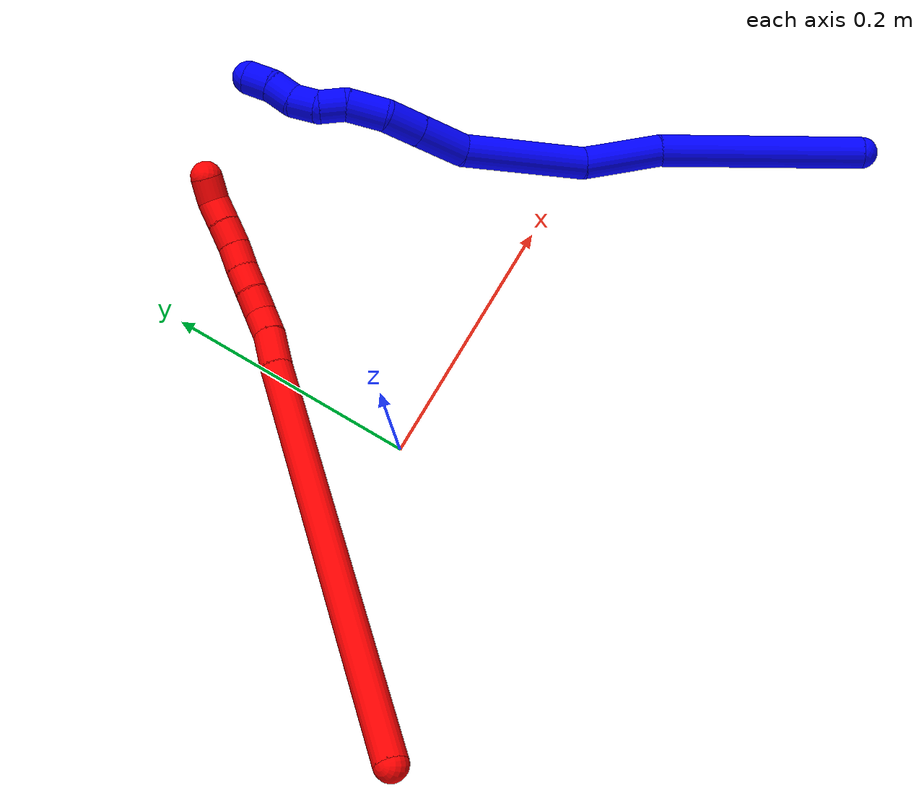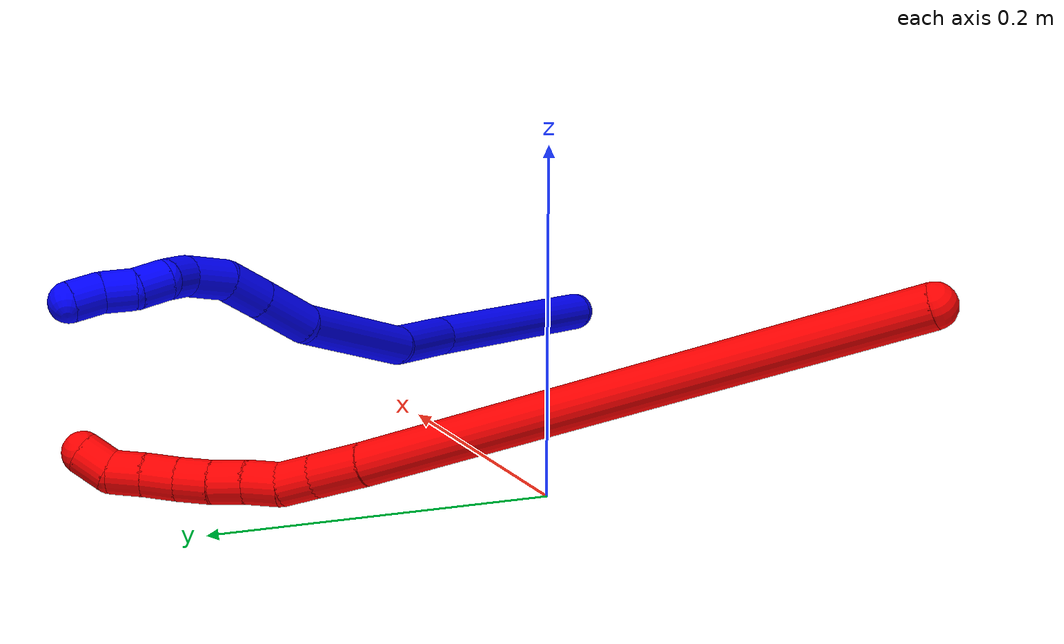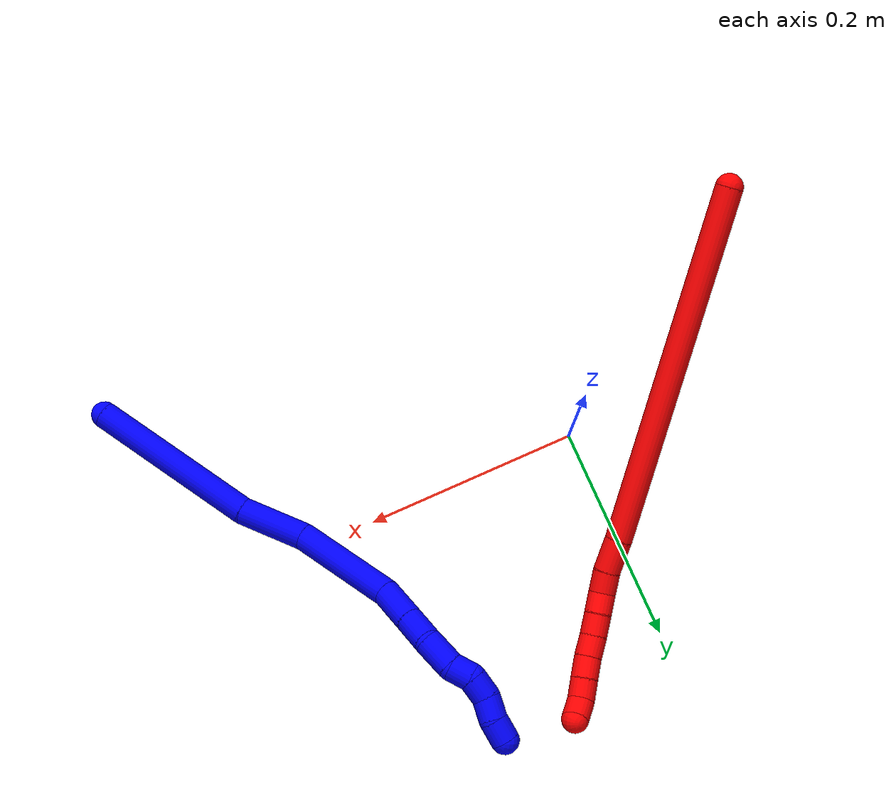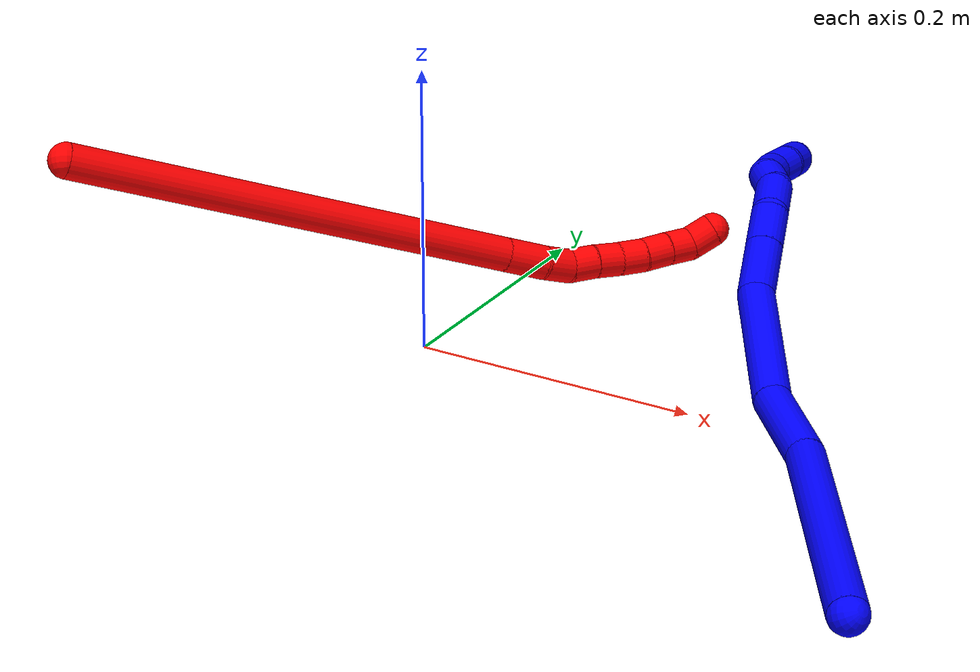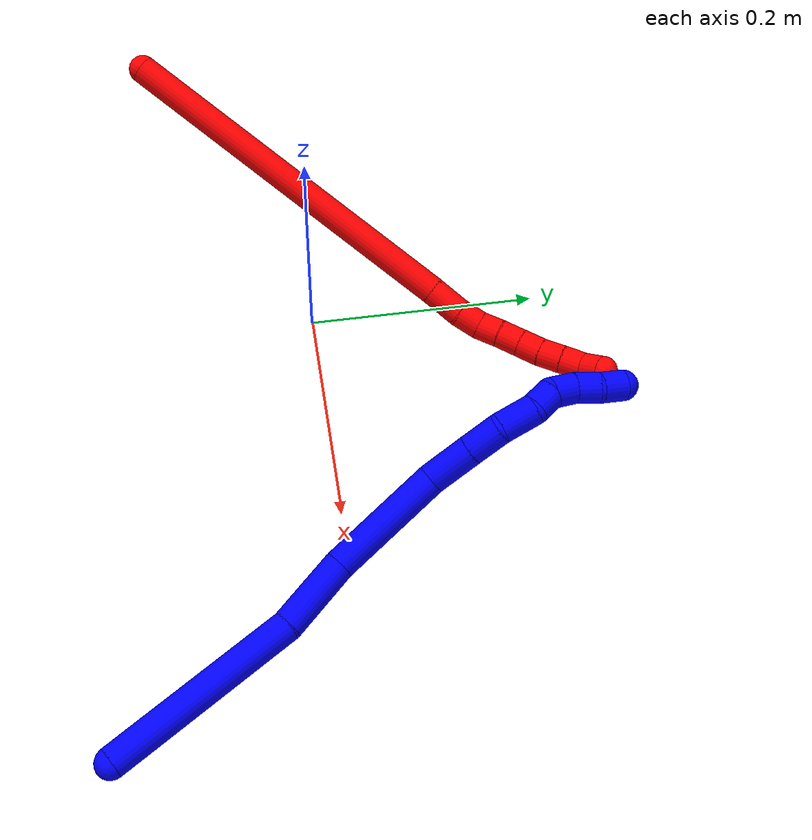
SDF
<sdf version="1.7">
 <world name="default">
  <plugin name="TubeGeneratorPlugin" filename="libtube_generator_plugin.so"/>
  <model name="photoneo_s_sensor">
   <static>1</static>
   <pose>0 0 2 1.57079 1.57079 3.14159</pose>
   <link name="link">
    <inertial><mass>0.1</mass></inertial>
    <sensor name="sensor" type="depth">
     <update_rate>30</update_rate>
     <camera>
      <horizontal_fov>1.22</horizontal_fov>
      <image><width>1920</width><height>1200</height><format>B8G8R8</format></image>
      <clip><near>0.1</near><far>4</far></clip>
      <depth_camera><output>points</output></depth_camera>
     </camera>
     <plugin name="camera_plugin" filename="libgazebo_ros_depth_camera.so">
      <baseline>0.2</baseline>
      <alwaysOn>1</alwaysOn>
      <updateRate>0.0</updateRate>
      <cameraName>camera_ir</cameraName>
      <imageTopicName>/camera/color/image_raw</imageTopicName>
      <cameraInfoTopicName>/camera/color/camera_info</cameraInfoTopicName>
      <depthImageTopicName>/camera/depth/image_raw</depthImageTopicName>
      <depthImageCameraInfoTopicName>/camera/depth/camera_info</depthImageCameraInfoTopicName>
      <pointCloudTopicName>/camera/depth/points</pointCloudTopicName>
      <frameName>fr_optical</frameName>
      <pointCloudCutoff>0.1</pointCloudCutoff>
      <pointCloudCutoffMax>2.0</pointCloudCutoffMax>
      <distortionK1>0</distortionK1>
      <distortionK2>0</distortionK2>
      <distortionK3>0</distortionK3>
      <distortionT1>0</distortionT1>
      <distortionT2>0</distortionT2>
      <CxPrime>0</CxPrime>
      <Cx>0</Cx>
      <Cy>0</Cy>
      <focalLength>0</focalLength>
      <hackBaseline>0</hackBaseline>
     </plugin>
    </sensor>
   </link>
  </model>
  <gravity>0 0 -9.8</gravity>
  <magnetic_field>6e-06 2.3e-05 -4.2e-05</magnetic_field>
  <atmosphere type="adiabatic"/>
  <physics name="default_physics" default="0" type="ode">
   <max_step_size>0.003</max_step_size>
   <real_time_factor>1</real_time_factor>
   <real_time_update_rate>1000</real_time_update_rate>
   <max_contacts>10000</max_contacts>
   <ode>
    <solver>
     <type>quick</type>
     <iters>100</iters>
     <sor>1.3</sor>
     <use_dynamic_moi_rescaling>0</use_dynamic_moi_rescaling>
    </solver>
    <constraints>
     <contact_max_correcting_vel>0</contact_max_correcting_vel>
     <contact_surface_layer>0.001</contact_surface_layer>
     <cfm>0</cfm>
     <erp>0.2</erp>
    </constraints>
   </ode>
  </physics>
  <scene><ambient>0.4 0.4 0.4 1</ambient><background>0.7 0.7 0.7 1</background><shadows>0</shadows></scene>
  <audio><device>default</device></audio>
  <spherical_coordinates>
   <surface_model>EARTH_WGS84</surface_model>
   <latitude_deg>0</latitude_deg>
   <longitude_deg>0</longitude_deg>
   <elevation>0</elevation>
   <heading_deg>0</heading_deg>
  </spherical_coordinates>
  <model name="bin">
   <static>1</static>
   <link name="bottom">
    <collision name="collision-bottom">
     <pose>0 0 -0.01 0 -0 0</pose>
     <geometry><box><size>0.8 0.6 0.02</size></box></geometry>
     <surface>
      <friction><ode><mu>100</mu><mu2>100</mu2></ode></friction>
      <contact><collide_bitmask>65535</collide_bitmask></contact>
     </surface>
    </collision>
   </link>
   <link name="west_wall">
    <collision name="collision-west_wall">
     <pose>-0.41 0 0.1 0 -0 0</pose>
     <geometry><box><size>0.02 0.6 0.2</size></box></geometry>
     <surface>
      <friction><ode><mu>100</mu><mu2>100</mu2></ode></friction>
      <contact><collide_bitmask>65535</collide_bitmask></contact>
     </surface>
    </collision>
   </link>
   <link name="east_wall">
    <collision name="collision-east_wall">
     <pose>0.41 0 0.1 0 -0 0</pose>
     <geometry><box><size>0.02 0.6 0.2</size></box></geometry>
     <surface>
      <friction><ode><mu>100</mu><mu2>100</mu2></ode></friction>
      <contact><collide_bitmask>65535</collide_bitmask></contact>
     </surface>
    </collision>
   </link>
   <link name="south_wall">
    <collision name="collision-south_wall">
     <pose>0 -0.31 0.1 0 -0 0</pose>
     <geometry><box><size>0.8 0.02 0.2</size></box></geometry>
     <surface>
      <friction><ode><mu>100</mu><mu2>100</mu2></ode></friction>
      <contact><collide_bitmask>65535</collide_bitmask></contact>
     </surface>
    </collision>
   </link>
   <link name="north_wall">
    <collision name="collision-north_wall">
     <pose>0 0.31 0.1 0 -0 0</pose>
     <geometry><box><size>0.8 0.02 0.2</size></box></geometry>
     <surface>
      <friction><ode><mu>100</mu><mu2>100</mu2></ode></friction>
      <contact><collide_bitmask>65535</collide_bitmask></contact>
     </surface>
    </collision>
   </link>
  </model>
  <model name="1">
   <static>0</static>
   <link name="1">
    <collision name="collision-cylinder-e_1_1_4">
     <pose>0.003445 0.065846 0.046228 -0.958694 0.042798 -0.022248</pose>
     <geometry><cylinder><radius>0.0125</radius><length>0.161054</length></cylinder></geometry>
     <surface>
      <friction><ode><mu>1.16</mu><mu2>1.16</mu2><slip1>0</slip1><slip2>0</slip2></ode></friction>
      <contact><ode><kp>1e+06</kp><kd>1</kd><max_vel>0</max_vel><min_depth>0.001</min_depth></ode></contact>
     </surface>
    </collision>
    <visual name="visual-cylinder-e_1_1_4">
     <pose>0.003445 0.065846 0.046228 -0.958694 0.042798 -0.022248</pose>
     <geometry><cylinder><radius>0.0125</radius><length>0.161054</length></cylinder></geometry>
     <material><ambient>0 0 1 1</ambient></material>
    </visual>
    <collision name="collision-cylinder-e_2_4_5">
     <pose>0.013536 0.154546 0.112415 -0.852869 0.215602 -0.098253</pose>
     <geometry><cylinder><radius>0.0125</radius><length>0.062123</length></cylinder></geometry>
     <surface>
      <friction><ode><mu>1.16</mu><mu2>1.16</mu2><slip1>0</slip1><slip2>0</slip2></ode></friction>
      <contact><ode><kp>1e+06</kp><kd>1</kd><max_vel>0</max_vel><min_depth>0.001</min_depth></ode></contact>
     </surface>
    </collision>
    <visual name="visual-cylinder-e_2_4_5">
     <pose>0.013536 0.154546 0.112415 -0.852869 0.215602 -0.098253</pose>
     <geometry><cylinder><radius>0.0125</radius><length>0.062123</length></cylinder></geometry>
     <material><ambient>0 0 1 1</ambient></material>
    </visual>
    <collision name="collision-cylinder-e_3_5_6">
     <pose>0.030364 0.221071 0.152044 -1.14763 0.209493 -0.135697</pose>
     <geometry><cylinder><radius>0.0125</radius><length>0.097935</length></cylinder></geometry>
     <surface>
      <friction><ode><mu>1.16</mu><mu2>1.16</mu2><slip1>0</slip1><slip2>0</slip2></ode></friction>
      <contact><ode><kp>1e+06</kp><kd>1</kd><max_vel>0</max_vel><min_depth>0.001</min_depth></ode></contact>
     </surface>
    </collision>
    <visual name="visual-cylinder-e_3_5_6">
     <pose>0.030364 0.221071 0.152044 -1.14763 0.209493 -0.135697</pose>
     <geometry><cylinder><radius>0.0125</radius><length>0.097935</length></cylinder></geometry>
     <material><ambient>0 0 1 1</ambient></material>
    </visual>
    <collision name="collision-cylinder-e_4_6_7">
     <pose>0.044346 0.283888 0.173459 -1.47988 0.195048 -0.178169</pose>
     <geometry><cylinder><radius>0.0125</radius><length>0.039193</length></cylinder></geometry>
     <surface>
      <friction><ode><mu>1.16</mu><mu2>1.16</mu2><slip1>0</slip1><slip2>0</slip2></ode></friction>
      <contact><ode><kp>1e+06</kp><kd>1</kd><max_vel>0</max_vel><min_depth>0.001</min_depth></ode></contact>
     </surface>
    </collision>
    <visual name="visual-cylinder-e_4_6_7">
     <pose>0.044346 0.283888 0.173459 -1.47988 0.195048 -0.178169</pose>
     <geometry><cylinder><radius>0.0125</radius><length>0.039193</length></cylinder></geometry>
     <material><ambient>0 0 1 1</ambient></material>
    </visual>
    <collision name="collision-cylinder-e_5_7_8">
     <pose>0.050752 0.316981 0.176528 -1.47613 0.184066 -0.167499</pose>
     <geometry><cylinder><radius>0.0125</radius><length>0.028501</length></cylinder></geometry>
     <surface>
      <friction><ode><mu>1.16</mu><mu2>1.16</mu2><slip1>0</slip1><slip2>0</slip2></ode></friction>
      <contact><ode><kp>1e+06</kp><kd>1</kd><max_vel>0</max_vel><min_depth>0.001</min_depth></ode></contact>
     </surface>
    </collision>
    <visual name="visual-cylinder-e_5_7_8">
     <pose>0.050752 0.316981 0.176528 -1.47613 0.184066 -0.167499</pose>
     <geometry><cylinder><radius>0.0125</radius><length>0.028501</length></cylinder></geometry>
     <material><ambient>0 0 1 1</ambient></material>
    </visual>
    <collision name="collision-cylinder-e_6_8_9">
     <pose>0.05314 0.345134 0.18317 -1.21264 -0.014507 0.01006</pose>
     <geometry><cylinder><radius>0.0125</radius><length>0.03034</length></cylinder></geometry>
     <surface>
      <friction><ode><mu>1.16</mu><mu2>1.16</mu2><slip1>0</slip1><slip2>0</slip2></ode></friction>
      <contact><ode><kp>1e+06</kp><kd>1</kd><max_vel>0</max_vel><min_depth>0.001</min_depth></ode></contact>
     </surface>
    </collision>
    <visual name="visual-cylinder-e_6_8_9">
     <pose>0.05314 0.345134 0.18317 -1.21264 -0.014507 0.01006</pose>
     <geometry><cylinder><radius>0.0125</radius><length>0.03034</length></cylinder></geometry>
     <material><ambient>0 0 1 1</ambient></material>
    </visual>
    <collision name="collision-cylinder-e_7_9_10">
     <pose>0.054147 0.366985 0.194874 -0.874839 0.122462 -0.057323</pose>
     <geometry><cylinder><radius>0.0125</radius><length>0.020076</length></cylinder></geometry>
     <surface>
      <friction><ode><mu>1.16</mu><mu2>1.16</mu2><slip1>0</slip1><slip2>0</slip2></ode></friction>
      <contact><ode><kp>1e+06</kp><kd>1</kd><max_vel>0</max_vel><min_depth>0.001</min_depth></ode></contact>
     </surface>
    </collision>
    <visual name="visual-cylinder-e_7_9_10">
     <pose>0.054147 0.366985 0.194874 -0.874839 0.122462 -0.057323</pose>
     <geometry><cylinder><radius>0.0125</radius><length>0.020076</length></cylinder></geometry>
     <material><ambient>0 0 1 1</ambient></material>
    </visual>
    <collision name="collision-cylinder-e_8_10_11">
     <pose>0.051769 0.38279 0.20635 -1.0132 -0.358623 0.200487</pose>
     <geometry><cylinder><radius>0.0125</radius><length>0.020537</length></cylinder></geometry>
     <surface>
      <friction><ode><mu>1.16</mu><mu2>1.16</mu2><slip1>0</slip1><slip2>0</slip2></ode></friction>
      <contact><ode><kp>1e+06</kp><kd>1</kd><max_vel>0</max_vel><min_depth>0.001</min_depth></ode></contact>
     </surface>
    </collision>
    <visual name="visual-cylinder-e_8_10_11">
     <pose>0.051769 0.38279 0.20635 -1.0132 -0.358623 0.200487</pose>
     <geometry><cylinder><radius>0.0125</radius><length>0.020537</length></cylinder></geometry>
     <material><ambient>0 0 1 1</ambient></material>
    </visual>
    <collision name="collision-cylinder-e_9_11_12">
     <pose>0.043403 0.399562 0.213291 -1.35886 -0.495533 0.403097</pose>
     <geometry><cylinder><radius>0.0125</radius><length>0.020029</length></cylinder></geometry>
     <surface>
      <friction><ode><mu>1.16</mu><mu2>1.16</mu2><slip1>0</slip1><slip2>0</slip2></ode></friction>
      <contact><ode><kp>1e+06</kp><kd>1</kd><max_vel>0</max_vel><min_depth>0.001</min_depth></ode></contact>
     </surface>
    </collision>
    <visual name="visual-cylinder-e_9_11_12">
     <pose>0.043403 0.399562 0.213291 -1.35886 -0.495533 0.403097</pose>
     <geometry><cylinder><radius>0.0125</radius><length>0.020029</length></cylinder></geometry>
     <material><ambient>0 0 1 1</ambient></material>
    </visual>
    <collision name="collision-cylinder-e_10_12_2">
     <pose>0.034269 0.416196 0.219466 -1.07661 -0.447382 0.270039</pose>
     <geometry><cylinder><radius>0.0125</radius><length>0.020212</length></cylinder></geometry>
     <surface>
      <friction><ode><mu>1.16</mu><mu2>1.16</mu2><slip1>0</slip1><slip2>0</slip2></ode></friction>
      <contact><ode><kp>1e+06</kp><kd>1</kd><max_vel>0</max_vel><min_depth>0.001</min_depth></ode></contact>
     </surface>
    </collision>
    <visual name="visual-cylinder-e_10_12_2">
     <pose>0.034269 0.416196 0.219466 -1.07661 -0.447382 0.270039</pose>
     <geometry><cylinder><radius>0.0125</radius><length>0.020212</length></cylinder></geometry>
     <material><ambient>0 0 1 1</ambient></material>
    </visual>
    <collision name="collision-sphere-2">
     <pose>0.029897 0.424217 0.223787 0 -0 0</pose>
     <geometry><sphere><radius>0.0125</radius></sphere></geometry>
     <surface>
      <friction><ode><mu>1.16</mu><mu2>1.16</mu2><slip1>0</slip1><slip2>0</slip2></ode></friction>
      <contact><ode><kp>1e+06</kp><kd>1</kd><max_vel>0</max_vel><min_depth>0.001</min_depth></ode></contact>
     </surface>
    </collision>
    <visual name="visual-sphere-2">
     <pose>0.029897 0.424217 0.223787 0 -0 0</pose>
     <geometry><sphere><radius>0.0125</radius></sphere></geometry>
     <material><ambient>0 0 1 1</ambient></material>
    </visual>
    <collision name="collision-sphere-12">
     <pose>0.038641 0.408175 0.215144 0 -0 0</pose>
     <geometry><sphere><radius>0.0125</radius></sphere></geometry>
     <surface>
      <friction><ode><mu>1.16</mu><mu2>1.16</mu2><slip1>0</slip1><slip2>0</slip2></ode></friction>
      <contact><ode><kp>1e+06</kp><kd>1</kd><max_vel>0</max_vel><min_depth>0.001</min_depth></ode></contact>
     </surface>
    </collision>
    <visual name="visual-sphere-12">
     <pose>0.038641 0.408175 0.215144 0 -0 0</pose>
     <geometry><sphere><radius>0.0125</radius></sphere></geometry>
     <material><ambient>0 0 1 1</ambient></material>
    </visual>
    <collision name="collision-sphere-11">
     <pose>0.048165 0.390949 0.211438 0 -0 0</pose>
     <geometry><sphere><radius>0.0125</radius></sphere></geometry>
     <surface>
      <friction><ode><mu>1.16</mu><mu2>1.16</mu2><slip1>0</slip1><slip2>0</slip2></ode></friction>
      <contact><ode><kp>1e+06</kp><kd>1</kd><max_vel>0</max_vel><min_depth>0.001</min_depth></ode></contact>
     </surface>
    </collision>
    <visual name="visual-sphere-11">
     <pose>0.048165 0.390949 0.211438 0 -0 0</pose>
     <geometry><sphere><radius>0.0125</radius></sphere></geometry>
     <material><ambient>0 0 1 1</ambient></material>
    </visual>
    <collision name="collision-sphere-10">
     <pose>0.055373 0.374631 0.201262 0 -0 0</pose>
     <geometry><sphere><radius>0.0125</radius></sphere></geometry>
     <surface>
      <friction><ode><mu>1.16</mu><mu2>1.16</mu2><slip1>0</slip1><slip2>0</slip2></ode></friction>
      <contact><ode><kp>1e+06</kp><kd>1</kd><max_vel>0</max_vel><min_depth>0.001</min_depth></ode></contact>
     </surface>
    </collision>
    <visual name="visual-sphere-10">
     <pose>0.055373 0.374631 0.201262 0 -0 0</pose>
     <geometry><sphere><radius>0.0125</radius></sphere></geometry>
     <material><ambient>0 0 1 1</ambient></material>
    </visual>
    <collision name="collision-sphere-9">
     <pose>0.05292 0.35934 0.188487 0 -0 0</pose>
     <geometry><sphere><radius>0.0125</radius></sphere></geometry>
     <surface>
      <friction><ode><mu>1.16</mu><mu2>1.16</mu2><slip1>0</slip1><slip2>0</slip2></ode></friction>
      <contact><ode><kp>1e+06</kp><kd>1</kd><max_vel>0</max_vel><min_depth>0.001</min_depth></ode></contact>
     </surface>
    </collision>
    <visual name="visual-sphere-9">
     <pose>0.05292 0.35934 0.188487 0 -0 0</pose>
     <geometry><sphere><radius>0.0125</radius></sphere></geometry>
     <material><ambient>0 0 1 1</ambient></material>
    </visual>
    <collision name="collision-sphere-4">
     <pose>0.006891 0.131693 0.092455 0 -0 0</pose>
     <geometry><sphere><radius>0.0125</radius></sphere></geometry>
     <surface>
      <friction><ode><mu>1.16</mu><mu2>1.16</mu2><slip1>0</slip1><slip2>0</slip2></ode></friction>
      <contact><ode><kp>1e+06</kp><kd>1</kd><max_vel>0</max_vel><min_depth>0.001</min_depth></ode></contact>
     </surface>
    </collision>
    <visual name="visual-sphere-4">
     <pose>0.006891 0.131693 0.092455 0 -0 0</pose>
     <geometry><sphere><radius>0.0125</radius></sphere></geometry>
     <material><ambient>0 0 1 1</ambient></material>
    </visual>
    <collision name="collision-sphere-1">
     <geometry><sphere><radius>0.0125</radius></sphere></geometry>
     <surface>
      <friction><ode><mu>1.16</mu><mu2>1.16</mu2><slip1>0</slip1><slip2>0</slip2></ode></friction>
      <contact><ode><kp>1e+06</kp><kd>1</kd><max_vel>0</max_vel><min_depth>0.001</min_depth></ode></contact>
     </surface>
    </collision>
    <visual name="visual-sphere-1">
     <geometry><sphere><radius>0.0125</radius></sphere></geometry>
     <material><ambient>0 0 1 1</ambient></material>
    </visual>
    <collision name="collision-sphere-8">
     <pose>0.053361 0.330928 0.177852 0 -0 0</pose>
     <geometry><sphere><radius>0.0125</radius></sphere></geometry>
     <surface>
      <friction><ode><mu>1.16</mu><mu2>1.16</mu2><slip1>0</slip1><slip2>0</slip2></ode></friction>
      <contact><ode><kp>1e+06</kp><kd>1</kd><max_vel>0</max_vel><min_depth>0.001</min_depth></ode></contact>
     </surface>
    </collision>
    <visual name="visual-sphere-8">
     <pose>0.053361 0.330928 0.177852 0 -0 0</pose>
     <geometry><sphere><radius>0.0125</radius></sphere></geometry>
     <material><ambient>0 0 1 1</ambient></material>
    </visual>
    <collision name="collision-sphere-5">
     <pose>0.020181 0.177399 0.132375 0 -0 0</pose>
     <geometry><sphere><radius>0.0125</radius></sphere></geometry>
     <surface>
      <friction><ode><mu>1.16</mu><mu2>1.16</mu2><slip1>0</slip1><slip2>0</slip2></ode></friction>
      <contact><ode><kp>1e+06</kp><kd>1</kd><max_vel>0</max_vel><min_depth>0.001</min_depth></ode></contact>
     </surface>
    </collision>
    <visual name="visual-sphere-5">
     <pose>0.020181 0.177399 0.132375 0 -0 0</pose>
     <geometry><sphere><radius>0.0125</radius></sphere></geometry>
     <material><ambient>0 0 1 1</ambient></material>
    </visual>
    <collision name="collision-sphere-6">
     <pose>0.040548 0.264743 0.171713 0 -0 0</pose>
     <geometry><sphere><radius>0.0125</radius></sphere></geometry>
     <surface>
      <friction><ode><mu>1.16</mu><mu2>1.16</mu2><slip1>0</slip1><slip2>0</slip2></ode></friction>
      <contact><ode><kp>1e+06</kp><kd>1</kd><max_vel>0</max_vel><min_depth>0.001</min_depth></ode></contact>
     </surface>
    </collision>
    <visual name="visual-sphere-6">
     <pose>0.040548 0.264743 0.171713 0 -0 0</pose>
     <geometry><sphere><radius>0.0125</radius></sphere></geometry>
     <material><ambient>0 0 1 1</ambient></material>
    </visual>
    <collision name="collision-sphere-7">
     <pose>0.048144 0.303034 0.175204 0 -0 0</pose>
     <geometry><sphere><radius>0.0125</radius></sphere></geometry>
     <surface>
      <friction><ode><mu>1.16</mu><mu2>1.16</mu2><slip1>0</slip1><slip2>0</slip2></ode></friction>
      <contact><ode><kp>1e+06</kp><kd>1</kd><max_vel>0</max_vel><min_depth>0.001</min_depth></ode></contact>
     </surface>
    </collision>
    <visual name="visual-sphere-7">
     <pose>0.048144 0.303034 0.175204 0 -0 0</pose>
     <geometry><sphere><radius>0.0125</radius></sphere></geometry>
     <material><ambient>0 0 1 1</ambient></material>
    </visual>
    <inertial>
     <pose>0.025757 0.208264 0.127128 0 -0 0</pose>
     <mass>0.5</mass>
     <inertia>
      <ixx>0.000454</ixx>
      <ixy>0</ixy>
      <ixz>0</ixz>
      <iyy>0.000272</iyy>
      <iyz>0</iyz>
      <izz>-0.000417</izz>
     </inertia>
    </inertial>
   </link>
   <pose>0.3876 -0.192259 0.012144 2.47279 -0.748695 -2.5877</pose>
  </model>
  <model name="2">
   <static>0</static>
   <link name="2">
    <collision name="collision-cylinder-e_1_1_4">
     <pose>0.138171 0.084919 -0.023752 -1.84353 1.00277 -1.25127</pose>
     <geometry><cylinder><radius>0.0125</radius><length>0.327821</length></cylinder></geometry>
     <surface>
      <friction><ode><mu>1.16</mu><mu2>1.16</mu2><slip1>0</slip1><slip2>0</slip2></ode></friction>
      <contact><ode><kp>1e+06</kp><kd>1</kd><max_vel>0</max_vel><min_depth>0.001</min_depth></ode></contact>
     </surface>
    </collision>
    <visual name="visual-cylinder-e_1_1_4">
     <pose>0.138171 0.084919 -0.023752 -1.84353 1.00277 -1.25127</pose>
     <geometry><cylinder><radius>0.0125</radius><length>0.327821</length></cylinder></geometry>
     <material><ambient>1 0 0 1</ambient></material>
    </visual>
    <collision name="collision-cylinder-e_2_4_5">
     <pose>0.289846 0.177142 -0.049992 -1.89903 1.05171 -1.36251</pose>
     <geometry><cylinder><radius>0.0125</radius><length>0.031104</length></cylinder></geometry>
     <surface>
      <friction><ode><mu>1.16</mu><mu2>1.16</mu2><slip1>0</slip1><slip2>0</slip2></ode></friction>
      <contact><ode><kp>1e+06</kp><kd>1</kd><max_vel>0</max_vel><min_depth>0.001</min_depth></ode></contact>
     </surface>
    </collision>
    <visual name="visual-cylinder-e_2_4_5">
     <pose>0.289846 0.177142 -0.049992 -1.89903 1.05171 -1.36251</pose>
     <geometry><cylinder><radius>0.0125</radius><length>0.031104</length></cylinder></geometry>
     <material><ambient>1 0 0 1</ambient></material>
    </visual>
    <collision name="collision-cylinder-e_3_5_6">
     <pose>0.31202 0.190355 -0.053129 -1.68022 0.96977 -1.06293</pose>
     <geometry><cylinder><radius>0.0125</radius><length>0.021027</length></cylinder></geometry>
     <surface>
      <friction><ode><mu>1.16</mu><mu2>1.16</mu2><slip1>0</slip1><slip2>0</slip2></ode></friction>
      <contact><ode><kp>1e+06</kp><kd>1</kd><max_vel>0</max_vel><min_depth>0.001</min_depth></ode></contact>
     </surface>
    </collision>
    <visual name="visual-cylinder-e_3_5_6">
     <pose>0.31202 0.190355 -0.053129 -1.68022 0.96977 -1.06293</pose>
     <geometry><cylinder><radius>0.0125</radius><length>0.021027</length></cylinder></geometry>
     <material><ambient>1 0 0 1</ambient></material>
    </visual>
    <collision name="collision-cylinder-e_4_6_7">
     <pose>0.329668 0.200273 -0.051921 -1.13698 1.11343 -0.756875</pose>
     <geometry><cylinder><radius>0.0125</radius><length>0.02001</length></cylinder></geometry>
     <surface>
      <friction><ode><mu>1.16</mu><mu2>1.16</mu2><slip1>0</slip1><slip2>0</slip2></ode></friction>
      <contact><ode><kp>1e+06</kp><kd>1</kd><max_vel>0</max_vel><min_depth>0.001</min_depth></ode></contact>
     </surface>
    </collision>
    <visual name="visual-cylinder-e_4_6_7">
     <pose>0.329668 0.200273 -0.051921 -1.13698 1.11343 -0.756875</pose>
     <geometry><cylinder><radius>0.0125</radius><length>0.02001</length></cylinder></geometry>
     <material><ambient>1 0 0 1</ambient></material>
    </visual>
    <collision name="collision-cylinder-e_5_7_8">
     <pose>0.347498 0.208776 -0.048836 -1.30404 1.08635 -0.863776</pose>
     <geometry><cylinder><radius>0.0125</radius><length>0.020008</length></cylinder></geometry>
     <surface>
      <friction><ode><mu>1.16</mu><mu2>1.16</mu2><slip1>0</slip1><slip2>0</slip2></ode></friction>
      <contact><ode><kp>1e+06</kp><kd>1</kd><max_vel>0</max_vel><min_depth>0.001</min_depth></ode></contact>
     </surface>
    </collision>
    <visual name="visual-cylinder-e_5_7_8">
     <pose>0.347498 0.208776 -0.048836 -1.30404 1.08635 -0.863776</pose>
     <geometry><cylinder><radius>0.0125</radius><length>0.020008</length></cylinder></geometry>
     <material><ambient>1 0 0 1</ambient></material>
    </visual>
    <collision name="collision-cylinder-e_6_8_9">
     <pose>0.365529 0.216943 -0.046044 -1.1683 1.16053 -0.817918</pose>
     <geometry><cylinder><radius>0.0125</radius><length>0.020018</length></cylinder></geometry>
     <surface>
      <friction><ode><mu>1.16</mu><mu2>1.16</mu2><slip1>0</slip1><slip2>0</slip2></ode></friction>
      <contact><ode><kp>1e+06</kp><kd>1</kd><max_vel>0</max_vel><min_depth>0.001</min_depth></ode></contact>
     </surface>
    </collision>
    <visual name="visual-cylinder-e_6_8_9">
     <pose>0.365529 0.216943 -0.046044 -1.1683 1.16053 -0.817918</pose>
     <geometry><cylinder><radius>0.0125</radius><length>0.020018</length></cylinder></geometry>
     <material><ambient>1 0 0 1</ambient></material>
    </visual>
    <collision name="collision-cylinder-e_7_9_10">
     <pose>0.383582 0.22445 -0.041906 -0.97946 1.09103 -0.625804</pose>
     <geometry><cylinder><radius>0.0125</radius><length>0.020009</length></cylinder></geometry>
     <surface>
      <friction><ode><mu>1.16</mu><mu2>1.16</mu2><slip1>0</slip1><slip2>0</slip2></ode></friction>
      <contact><ode><kp>1e+06</kp><kd>1</kd><max_vel>0</max_vel><min_depth>0.001</min_depth></ode></contact>
     </surface>
    </collision>
    <visual name="visual-cylinder-e_7_9_10">
     <pose>0.383582 0.22445 -0.041906 -0.97946 1.09103 -0.625804</pose>
     <geometry><cylinder><radius>0.0125</radius><length>0.020009</length></cylinder></geometry>
     <material><ambient>1 0 0 1</ambient></material>
    </visual>
    <collision name="collision-cylinder-e_8_10_11">
     <pose>0.401255 0.232451 -0.037043 -1.06862 1.07542 -0.678435</pose>
     <geometry><cylinder><radius>0.0125</radius><length>0.02</length></cylinder></geometry>
     <surface>
      <friction><ode><mu>1.16</mu><mu2>1.16</mu2><slip1>0</slip1><slip2>0</slip2></ode></friction>
      <contact><ode><kp>1e+06</kp><kd>1</kd><max_vel>0</max_vel><min_depth>0.001</min_depth></ode></contact>
     </surface>
    </collision>
    <visual name="visual-cylinder-e_8_10_11">
     <pose>0.401255 0.232451 -0.037043 -1.06862 1.07542 -0.678435</pose>
     <geometry><cylinder><radius>0.0125</radius><length>0.02</length></cylinder></geometry>
     <material><ambient>1 0 0 1</ambient></material>
    </visual>
    <collision name="collision-cylinder-e_9_11_2">
     <pose>0.41887 0.236599 -0.030033 0.00392 1.07908 0.002347</pose>
     <geometry><cylinder><radius>0.0125</radius><length>0.020002</length></cylinder></geometry>
     <surface>
      <friction><ode><mu>1.16</mu><mu2>1.16</mu2><slip1>0</slip1><slip2>0</slip2></ode></friction>
      <contact><ode><kp>1e+06</kp><kd>1</kd><max_vel>0</max_vel><min_depth>0.001</min_depth></ode></contact>
     </surface>
    </collision>
    <visual name="visual-cylinder-e_9_11_2">
     <pose>0.41887 0.236599 -0.030033 0.00392 1.07908 0.002347</pose>
     <geometry><cylinder><radius>0.0125</radius><length>0.020002</length></cylinder></geometry>
     <material><ambient>1 0 0 1</ambient></material>
    </visual>
    <collision name="collision-sphere-2">
     <pose>0.427686 0.23658 -0.025311 0 -0 0</pose>
     <geometry><sphere><radius>0.0125</radius></sphere></geometry>
     <surface>
      <friction><ode><mu>1.16</mu><mu2>1.16</mu2><slip1>0</slip1><slip2>0</slip2></ode></friction>
      <contact><ode><kp>1e+06</kp><kd>1</kd><max_vel>0</max_vel><min_depth>0.001</min_depth></ode></contact>
     </surface>
    </collision>
    <visual name="visual-sphere-2">
     <pose>0.427686 0.23658 -0.025311 0 -0 0</pose>
     <geometry><sphere><radius>0.0125</radius></sphere></geometry>
     <material><ambient>1 0 0 1</ambient></material>
    </visual>
    <collision name="collision-sphere-11">
     <pose>0.410053 0.236617 -0.034755 0 -0 0</pose>
     <geometry><sphere><radius>0.0125</radius></sphere></geometry>
     <surface>
      <friction><ode><mu>1.16</mu><mu2>1.16</mu2><slip1>0</slip1><slip2>0</slip2></ode></friction>
      <contact><ode><kp>1e+06</kp><kd>1</kd><max_vel>0</max_vel><min_depth>0.001</min_depth></ode></contact>
     </surface>
    </collision>
    <visual name="visual-sphere-11">
     <pose>0.410053 0.236617 -0.034755 0 -0 0</pose>
     <geometry><sphere><radius>0.0125</radius></sphere></geometry>
     <material><ambient>1 0 0 1</ambient></material>
    </visual>
    <collision name="collision-sphere-10">
     <pose>0.392457 0.228284 -0.039331 0 -0 0</pose>
     <geometry><sphere><radius>0.0125</radius></sphere></geometry>
     <surface>
      <friction><ode><mu>1.16</mu><mu2>1.16</mu2><slip1>0</slip1><slip2>0</slip2></ode></friction>
      <contact><ode><kp>1e+06</kp><kd>1</kd><max_vel>0</max_vel><min_depth>0.001</min_depth></ode></contact>
     </surface>
    </collision>
    <visual name="visual-sphere-10">
     <pose>0.392457 0.228284 -0.039331 0 -0 0</pose>
     <geometry><sphere><radius>0.0125</radius></sphere></geometry>
     <material><ambient>1 0 0 1</ambient></material>
    </visual>
    <collision name="collision-sphere-9">
     <pose>0.374707 0.220616 -0.04448 0 -0 0</pose>
     <geometry><sphere><radius>0.0125</radius></sphere></geometry>
     <surface>
      <friction><ode><mu>1.16</mu><mu2>1.16</mu2><slip1>0</slip1><slip2>0</slip2></ode></friction>
      <contact><ode><kp>1e+06</kp><kd>1</kd><max_vel>0</max_vel><min_depth>0.001</min_depth></ode></contact>
     </surface>
    </collision>
    <visual name="visual-sphere-9">
     <pose>0.374707 0.220616 -0.04448 0 -0 0</pose>
     <geometry><sphere><radius>0.0125</radius></sphere></geometry>
     <material><ambient>1 0 0 1</ambient></material>
    </visual>
    <collision name="collision-sphere-4">
     <pose>0.276342 0.169838 -0.047505 0 -0 0</pose>
     <geometry><sphere><radius>0.0125</radius></sphere></geometry>
     <surface>
      <friction><ode><mu>1.16</mu><mu2>1.16</mu2><slip1>0</slip1><slip2>0</slip2></ode></friction>
      <contact><ode><kp>1e+06</kp><kd>1</kd><max_vel>0</max_vel><min_depth>0.001</min_depth></ode></contact>
     </surface>
    </collision>
    <visual name="visual-sphere-4">
     <pose>0.276342 0.169838 -0.047505 0 -0 0</pose>
     <geometry><sphere><radius>0.0125</radius></sphere></geometry>
     <material><ambient>1 0 0 1</ambient></material>
    </visual>
    <collision name="collision-sphere-1">
     <geometry><sphere><radius>0.0125</radius></sphere></geometry>
     <surface>
      <friction><ode><mu>1.16</mu><mu2>1.16</mu2><slip1>0</slip1><slip2>0</slip2></ode></friction>
      <contact><ode><kp>1e+06</kp><kd>1</kd><max_vel>0</max_vel><min_depth>0.001</min_depth></ode></contact>
     </surface>
    </collision>
    <visual name="visual-sphere-1">
     <geometry><sphere><radius>0.0125</radius></sphere></geometry>
     <material><ambient>1 0 0 1</ambient></material>
    </visual>
    <collision name="collision-sphere-8">
     <pose>0.356351 0.21327 -0.047607 0 -0 0</pose>
     <geometry><sphere><radius>0.0125</radius></sphere></geometry>
     <surface>
      <friction><ode><mu>1.16</mu><mu2>1.16</mu2><slip1>0</slip1><slip2>0</slip2></ode></friction>
      <contact><ode><kp>1e+06</kp><kd>1</kd><max_vel>0</max_vel><min_depth>0.001</min_depth></ode></contact>
     </surface>
    </collision>
    <visual name="visual-sphere-8">
     <pose>0.356351 0.21327 -0.047607 0 -0 0</pose>
     <geometry><sphere><radius>0.0125</radius></sphere></geometry>
     <material><ambient>1 0 0 1</ambient></material>
    </visual>
    <collision name="collision-sphere-5">
     <pose>0.30335 0.184445 -0.052479 0 -0 0</pose>
     <geometry><sphere><radius>0.0125</radius></sphere></geometry>
     <surface>
      <friction><ode><mu>1.16</mu><mu2>1.16</mu2><slip1>0</slip1><slip2>0</slip2></ode></friction>
      <contact><ode><kp>1e+06</kp><kd>1</kd><max_vel>0</max_vel><min_depth>0.001</min_depth></ode></contact>
     </surface>
    </collision>
    <visual name="visual-sphere-5">
     <pose>0.30335 0.184445 -0.052479 0 -0 0</pose>
     <geometry><sphere><radius>0.0125</radius></sphere></geometry>
     <material><ambient>1 0 0 1</ambient></material>
    </visual>
    <collision name="collision-sphere-6">
     <pose>0.320691 0.196264 -0.053778 0 -0 0</pose>
     <geometry><sphere><radius>0.0125</radius></sphere></geometry>
     <surface>
      <friction><ode><mu>1.16</mu><mu2>1.16</mu2><slip1>0</slip1><slip2>0</slip2></ode></friction>
      <contact><ode><kp>1e+06</kp><kd>1</kd><max_vel>0</max_vel><min_depth>0.001</min_depth></ode></contact>
     </surface>
    </collision>
    <visual name="visual-sphere-6">
     <pose>0.320691 0.196264 -0.053778 0 -0 0</pose>
     <geometry><sphere><radius>0.0125</radius></sphere></geometry>
     <material><ambient>1 0 0 1</ambient></material>
    </visual>
    <collision name="collision-sphere-7">
     <pose>0.338645 0.204282 -0.050064 0 -0 0</pose>
     <geometry><sphere><radius>0.0125</radius></sphere></geometry>
     <surface>
      <friction><ode><mu>1.16</mu><mu2>1.16</mu2><slip1>0</slip1><slip2>0</slip2></ode></friction>
      <contact><ode><kp>1e+06</kp><kd>1</kd><max_vel>0</max_vel><min_depth>0.001</min_depth></ode></contact>
     </surface>
    </collision>
    <visual name="visual-sphere-7">
     <pose>0.338645 0.204282 -0.050064 0 -0 0</pose>
     <geometry><sphere><radius>0.0125</radius></sphere></geometry>
     <material><ambient>1 0 0 1</ambient></material>
    </visual>
    <inertial>
     <pose>0.211634 0.127502 -0.031153 0 -0 0</pose>
     <mass>0.5</mass>
     <inertia>
      <ixx>-0.000975</ixx>
      <ixy>0</ixy>
      <ixz>0</ixz>
      <iyy>0.000542</iyy>
      <iyz>0</iyz>
      <izz>-0.004033</izz>
     </inertia>
    </inertial>
   </link>
   <pose>-0.199843 -0.125129 0.139939 -0.615234 -0.09473 0.488974</pose>
  </model>
 </world>
</sdf>
